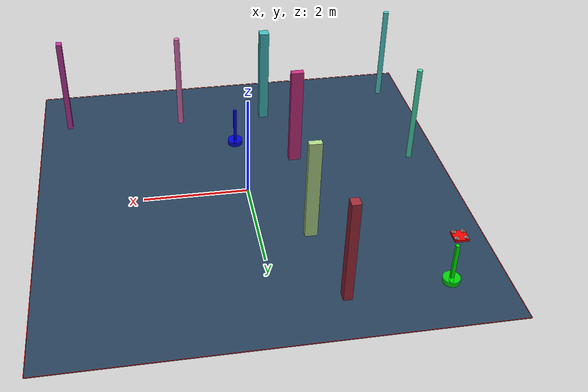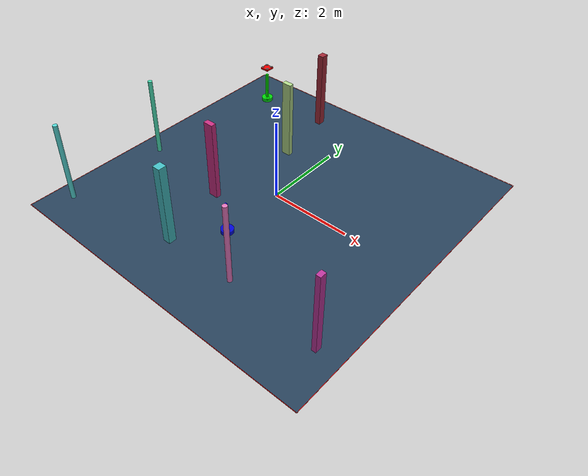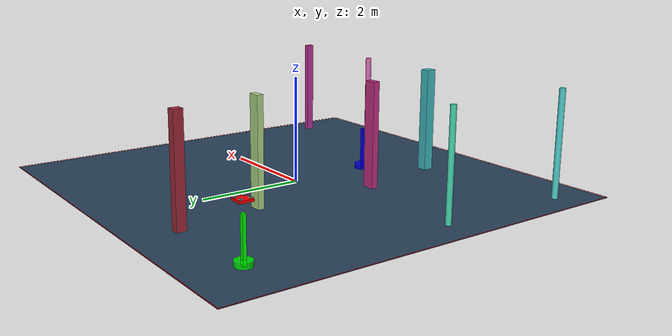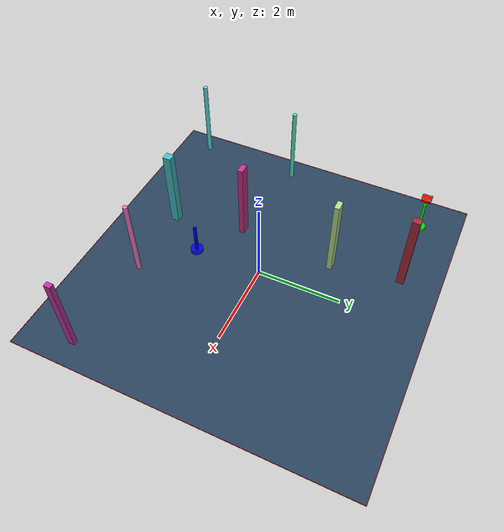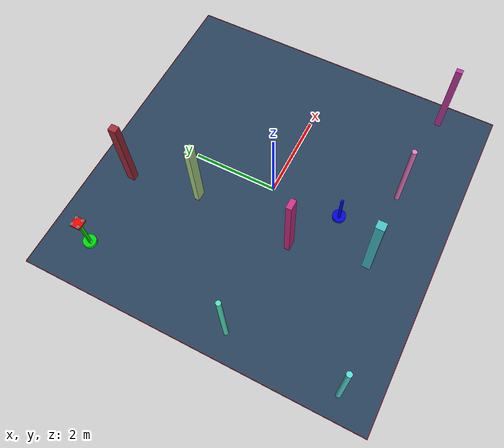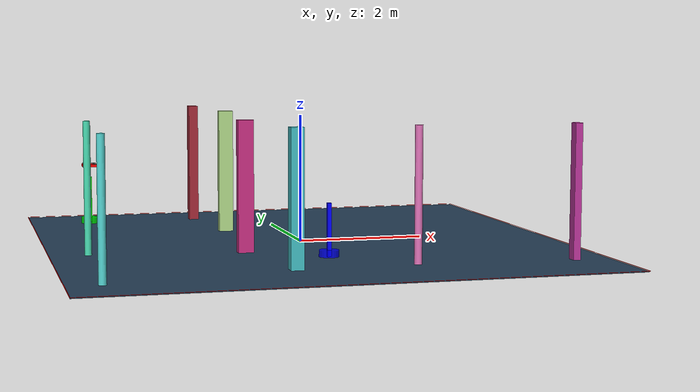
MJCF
<?xml version='1.0' encoding='utf-8'?>
<mujoco model="complex_uav_env">
  <compiler angle="degree" coordinate="local" inertiafromgeom="true" />
  <option integrator="RK4" timestep="0.01" />

  <visual>
    <headlight diffuse="0.6 0.6 0.6" ambient="0.3 0.3 0.3" />
    <rgba haze="0.15 0.25 0.35 1" />
    <global offwidth="2560" offheight="1440" />
  </visual>

  <asset>
    <texture type="skybox" builtin="gradient" rgb1="0.3 0.5 0.7" rgb2="0 0 0" width="512" height="3072" />
    <texture name="grid" type="2d" builtin="checker" rgb1="0.1 0.2 0.3" rgb2="0.2 0.3 0.4" width="512" height="512" />
    <material name="grid" texture="grid" texrepeat="1 1" />
  </asset>

  <worldbody>

    <geom name="ground" type="plane" size="4.0 4.0 0.1" material="grid" />
    <light name="light1" pos="0 0 4" dir="0 0 -1" diffuse="1 1 1" />

    <geom name="start_marker" type="cylinder" size="0.15 0.05" pos="-3.0 3.0 0.05" rgba="0 1 0 0.8" />
    <geom name="start_pole" type="box" size="0.03 0.03 0.4" pos="-3.0 3.0 0.4" rgba="0 1 0 1" />

    <geom name="goal_marker" type="cylinder" size="0.15 0.05" pos="0.020149988947511854 -1.6389590532931249 0.05" rgba="0 0 1 0.8" />
    <geom name="goal_pole" type="box" size="0.03 0.03 0.4" pos="0.020149988947511854 -1.6389590532931249 0.4" rgba="0 0 1 1" />

    <body name="chassis" pos="-3.0 3.0 1.0">
      <joint type="free" name="root" />
      <geom type="box" size="0.12 0.12 0.02" rgba="1.0 0.0 0.0 1.0" mass="0.8" />

      <geom type="box" size="0.08 0.01 0.005" pos="0 0 0.01" rgba="0.3 0.3 0.3 1" />
      <geom type="box" size="0.01 0.08 0.005" pos="0 0 0.01" rgba="0.3 0.3 0.3 1" />

      <geom type="cylinder" size="0.015 0.02" pos="0.08 0.08 0.015" rgba="0.2 0.2 0.2 1" />
      <geom type="cylinder" size="0.015 0.02" pos="-0.08 0.08 0.015" rgba="0.2 0.2 0.2 1" />
      <geom type="cylinder" size="0.015 0.02" pos="0.08 -0.08 0.015" rgba="0.2 0.2 0.2 1" />
      <geom type="cylinder" size="0.015 0.02" pos="-0.08 -0.08 0.015" rgba="0.2 0.2 0.2 1" />

      <geom type="cylinder" size="0.04 0.002" pos="0.08 0.08 0.035" rgba="0.7 0.7 0.7 0.8" />
      <geom type="cylinder" size="0.04 0.002" pos="-0.08 0.08 0.035" rgba="0.7 0.7 0.7 0.8" />
      <geom type="cylinder" size="0.04 0.002" pos="0.08 -0.08 0.035" rgba="0.7 0.7 0.7 0.8" />
      <geom type="cylinder" size="0.04 0.002" pos="-0.08 -0.08 0.035" rgba="0.7 0.7 0.7 0.8" />

      <site name="motor1" pos="0.08 0.08 0" size="0.01" />
      <site name="motor2" pos="-0.08 0.08 0" size="0.01" />
      <site name="motor3" pos="0.08 -0.08 0" size="0.01" />
      <site name="motor4" pos="-0.08 -0.08 0" size="0.01" />
    </body>
    <geom name="test_obs_0" type="box" size="0.1172397391020269 0.058820925445093895 1.0" pos="-0.9150713289968173 1.4407994044549355 1.0" rgba="0.6947980073885852 0.8495066972919435 0.5370083592733547 1.0" />
    <geom name="test_obs_1" type="cylinder" size="0.05258443857612019 1.0" pos="-3.4163493106193106 -0.6341107758923459 1.0" rgba="0.288546278120043 0.8709020463723929 0.7052605239437493 1.0" />
    <geom name="test_obs_2" type="box" size="0.054682348757225344 0.07617146245837056 1.0" pos="3.4310542310343526 -2.77551033901883 1.0" rgba="0.7339029603400625 0.21008489111043396 0.6078340309232015 1.0" />
    <geom name="test_obs_3" type="cylinder" size="0.05664802125778637 1.0" pos="-3.497788182531295 -3.179996639027127 1.0" rgba="0.328570917446239 0.8363660994868527 0.8265640923293742 1.0" />
    <geom name="test_obs_4" type="box" size="0.0792896554027901 0.09111164862197296 1.0" pos="-1.1722707677941488 3.075506889885454 1.0" rgba="0.6336957135685644 0.16542765888657485 0.22002465746903904 1.0" />
    <geom name="test_obs_5" type="cylinder" size="0.05704214938201561 1.0" pos="1.069428946571975 -2.6245817361519355 1.0" rgba="0.8820642003472314 0.4518204758853973 0.7262545376146977 1.0" />
    <geom name="test_obs_6" type="box" size="0.11992346453051897 0.06273504876638886 1.0" pos="-1.0897198993575312 -0.9283738545810412 1.0" rgba="0.7811562621619048 0.18329710932582632 0.5096950038689166 1.0" />
    <geom name="test_obs_7" type="box" size="0.0942384594090217 0.0963846029310485 1.0" pos="-0.7341422611344977 -2.6390826912863745 1.0" rgba="0.2588819446899159 0.7423762665923309 0.7636821183601085 1.0" />
  <geom name="boundary_north" type="box" size="4.0 0.005 0.002" pos="0 4.0 0.002" rgba="1.0 0.0 0.0 1.0" /><geom name="boundary_south" type="box" size="4.0 0.005 0.002" pos="0 -4.0 0.002" rgba="1.0 0.0 0.0 1.0" /><geom name="boundary_east" type="box" size="0.005 4.0 0.002" pos="4.0 0 0.002" rgba="1.0 0.0 0.0 1.0" /><geom name="boundary_west" type="box" size="0.005 4.0 0.002" pos="-4.0 0 0.002" rgba="1.0 0.0 0.0 1.0" /></worldbody>

  <actuator>
    <motor name="m1" gear="0 0 1 0 0 0" site="motor1" />
    <motor name="m2" gear="0 0 1 0 0 0" site="motor2" />
    <motor name="m3" gear="0 0 1 0 0 0" site="motor3" />
    <motor name="m4" gear="0 0 1 0 0 0" site="motor4" />
  </actuator>
</mujoco>
